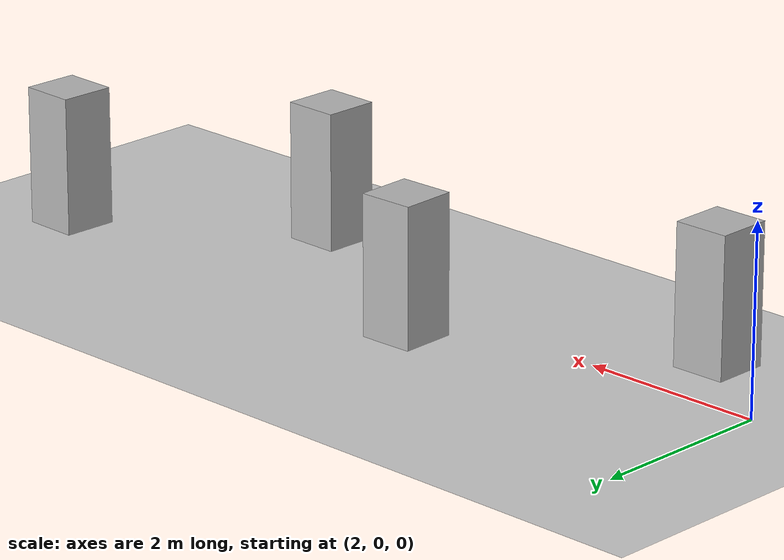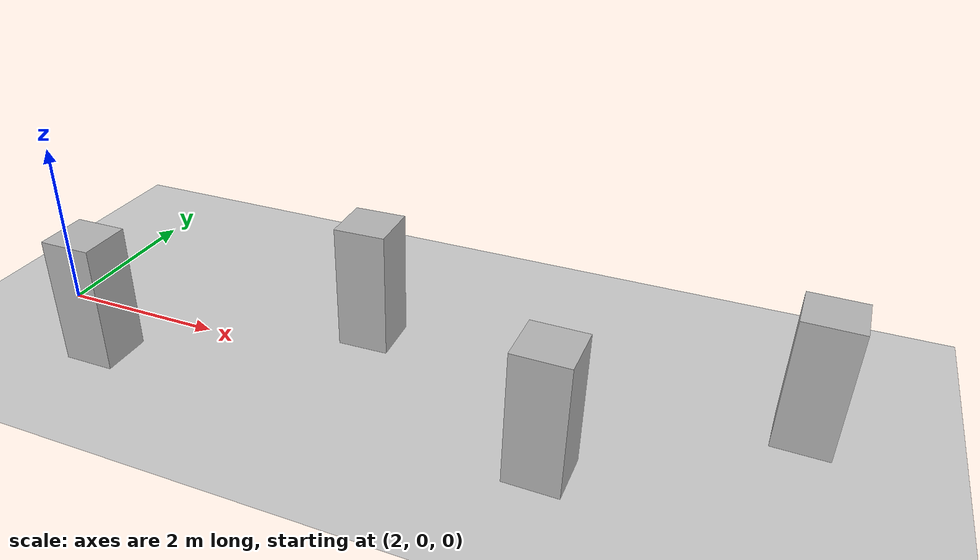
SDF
<?xml version="1.0"?>
<sdf version="1.6">
  <world name="v2-04g-r5-static-s5127">
    <gravity>0 0 -9.81</gravity>
    <physics name="v2_deterministic" type="ode">
      <max_step_size>0.002</max_step_size>
      <real_time_update_rate>500</real_time_update_rate>
    </physics>
    <include>
      <uri>model://sun</uri>
    </include>
    <include>
      <uri>model://ground_plane</uri>
    </include>
    <model name="pillar-1">
      <static>true</static>
      <pose>3.129967779 -0.831509076 0.750000000 0 0 0.006849720</pose>
      <link name="link">
        <collision name="collision">
          <geometry>
            <box>
              <size>0.600000 0.600000 1.500000</size>
            </box>
          </geometry>
        </collision>
        <visual name="visual">
          <geometry>
            <box>
              <size>0.600000 0.600000 1.500000</size>
            </box>
          </geometry>
        </visual>
      </link>
    </model>
    <model name="pillar-2">
      <static>true</static>
      <pose>5.858174534 0.695094144 0.750000000 0 0 0.029712270</pose>
      <link name="link">
        <collision name="collision">
          <geometry>
            <box>
              <size>0.600000 0.600000 1.500000</size>
            </box>
          </geometry>
        </collision>
        <visual name="visual">
          <geometry>
            <box>
              <size>0.600000 0.600000 1.500000</size>
            </box>
          </geometry>
        </visual>
      </link>
    </model>
    <model name="pillar-3">
      <static>true</static>
      <pose>8.396322676 -0.804188955 0.750000000 0 0 -0.012298678</pose>
      <link name="link">
        <collision name="collision">
          <geometry>
            <box>
              <size>0.600000 0.600000 1.500000</size>
            </box>
          </geometry>
        </collision>
        <visual name="visual">
          <geometry>
            <box>
              <size>0.600000 0.600000 1.500000</size>
            </box>
          </geometry>
        </visual>
      </link>
    </model>
    <model name="pillar-4">
      <static>true</static>
      <pose>10.714535096 0.770347466 0.750000000 0 0 -0.025475334</pose>
      <link name="link">
        <collision name="collision">
          <geometry>
            <box>
              <size>0.600000 0.600000 1.500000</size>
            </box>
          </geometry>
        </collision>
        <visual name="visual">
          <geometry>
            <box>
              <size>0.600000 0.600000 1.500000</size>
            </box>
          </geometry>
        </visual>
      </link>
    </model>
  </world>
</sdf>
